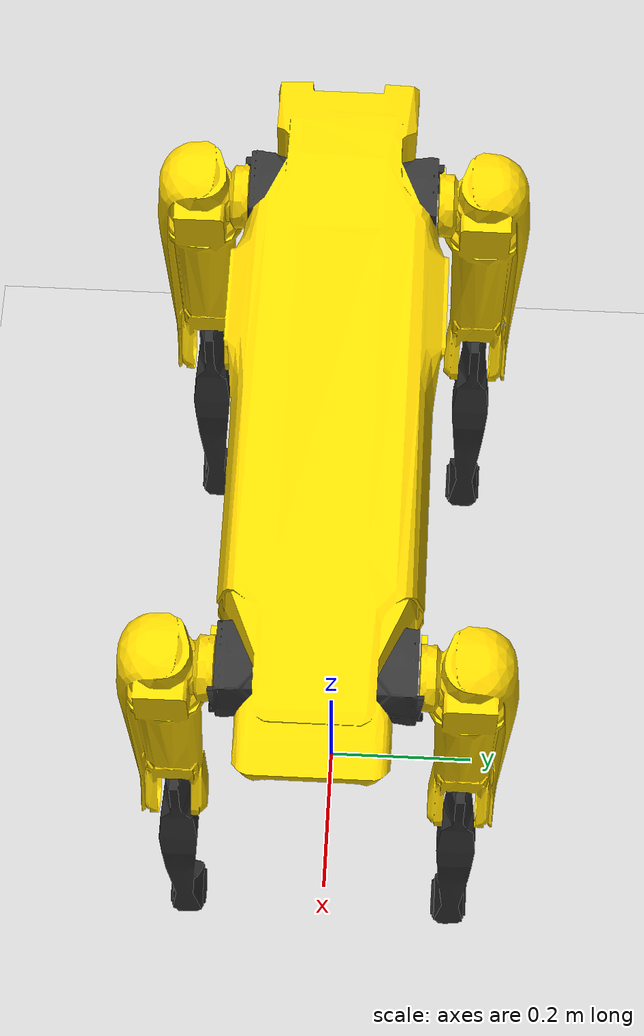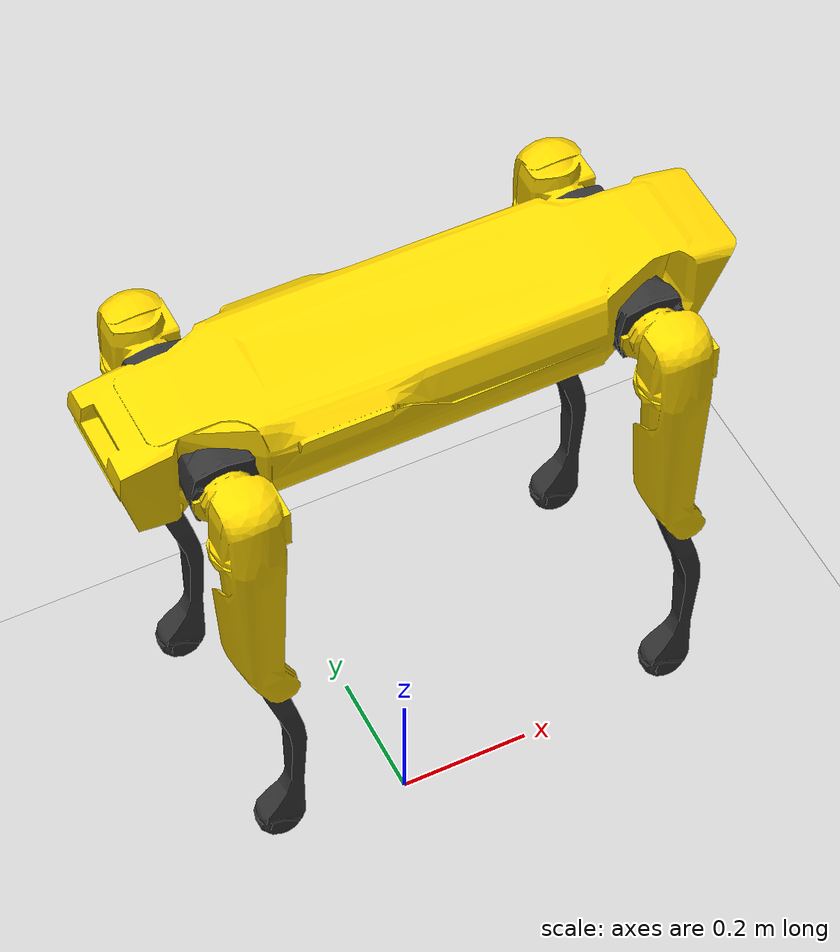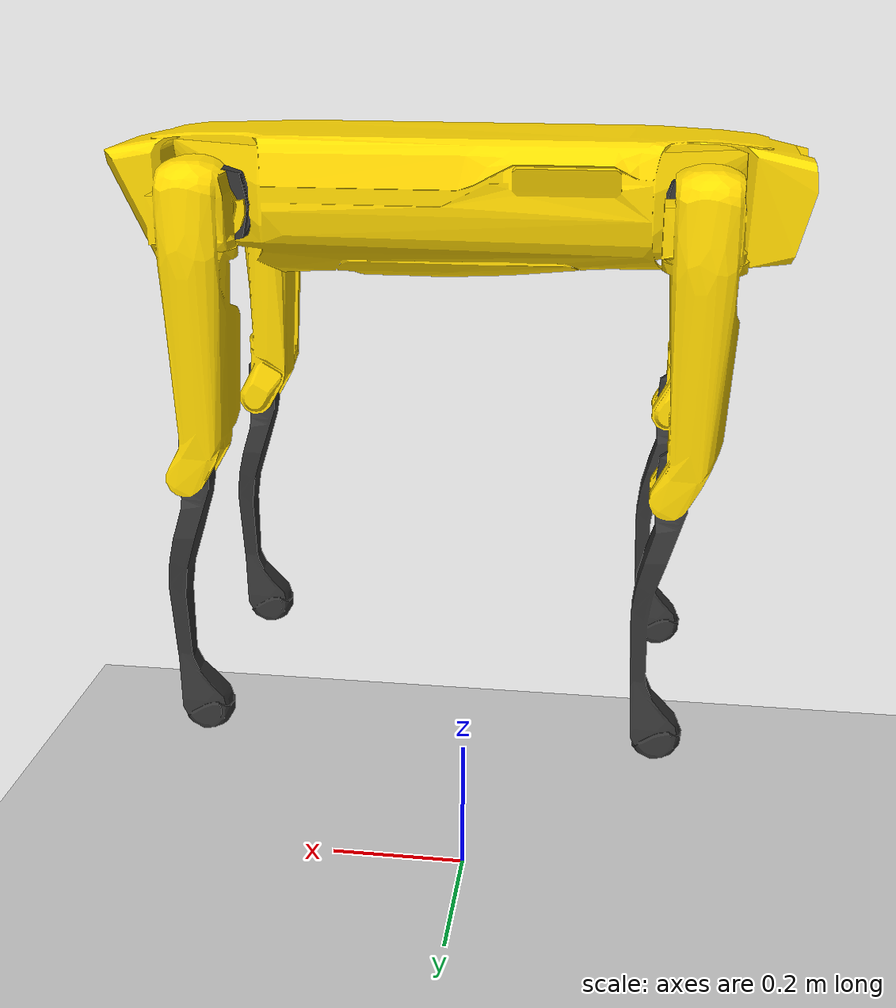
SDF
<?xml version="1.0" ?>
<sdf version="1.5">
  <world name="default">
    <scene>
      <ambient>0.500000 0.500000 0.500000 1.000000</ambient>
      <background>0.500000 0.500000 0.500000 1.000000</background>
      <shadows>0</shadows>
      <grid>false</grid>
    </scene>
    <physics type="ode">
      <gravity>0.000000 0.000000 -9.800000</gravity>
      <ode>
        <solver>
          <type>quick</type>
          <iters>10</iters>
          <sor>1.300000</sor>
        </solver>
        <constraints>
          <cfm>0.000000</cfm>
          <erp>0.200000</erp>
          <contact_max_correcting_vel>100.000000</contact_max_correcting_vel>
          <contact_surface_layer>0.001000</contact_surface_layer>
        </constraints>
      </ode>
      <real_time_update_rate>3000.000000</real_time_update_rate>
      <max_step_size>0.001000</max_step_size>
    </physics>
    <model name='ground_plane'>
      <static>1</static>
      <link name='link'>
        <collision name='collision'>
          <geometry>
            <plane>
              <normal>0 0 1</normal>
              <size>100 100</size>
            </plane>
          </geometry>
          <surface>
            <friction>
              <ode>
                <mu>100</mu>
                <mu2>50</mu2>
              </ode>
              <torsional>
                <ode/>
              </torsional>
            </friction>
            <contact>
              <ode/>
            </contact>
            <bounce/>
          </surface>
          <max_contacts>10</max_contacts>
        </collision>
        <visual name='visual'>
          <cast_shadows>0</cast_shadows>
          <geometry>
            <plane>
              <normal>0 0 1</normal>
              <size>100 100</size>
            </plane>
          </geometry>
          <material>
            <script>
              <uri>file://media/materials/scripts/gazebo.material</uri>
              <name>Gazebo/Grey</name>
            </script>
          </material>
        </visual>
        <self_collide>0</self_collide>
        <kinematic>0</kinematic>
        <gravity>1</gravity>
      </link>
    </model>
    <model name="spot">
      <pose>0 0 1 0 0 0</pose>
      <static>true</static>
      <link name="body">
        <visual name="visual">
          <geometry>
            <mesh>
              <uri>model://spot_whole_body.dae</uri>
              <scale> 1 1 1 </scale>
            </mesh>
          </geometry>
        </visual>
      </link>
    </model>
    <light name="my_light" type="directional">
      <pose>0.000000 0.000000 30.000000 0.000000 -0.000000 0.000000</pose>
      <diffuse>0.900000 0.900000 0.900000 1.000000</diffuse>
      <specular>0.100000 0.100000 0.100000 1.000000</specular>
      <attenuation>
        <range>20.000000</range>
      </attenuation>
      <direction>0.000000 0.000000 -1.000000</direction>
      <cast_shadows>0</cast_shadows>
    </light>
  </world>
</sdf>
